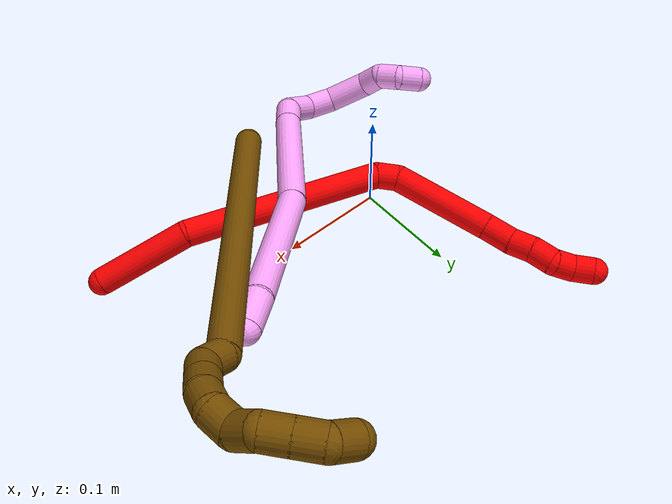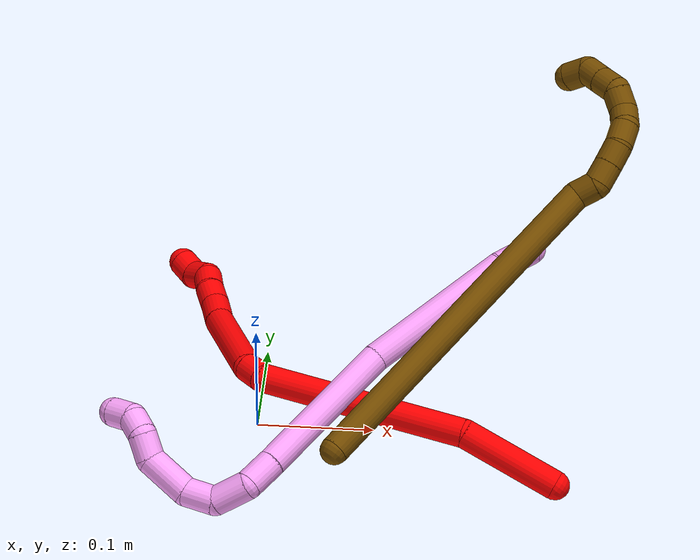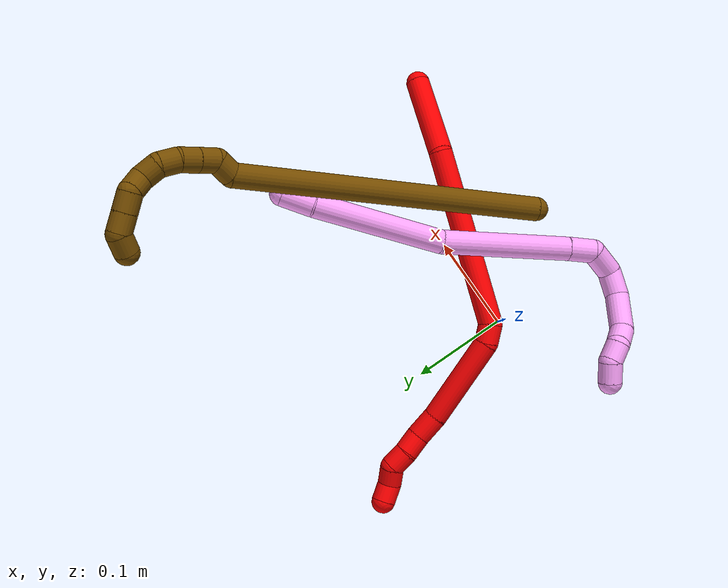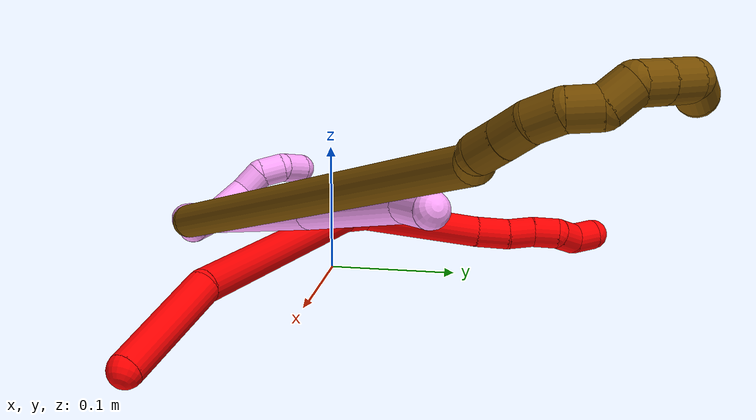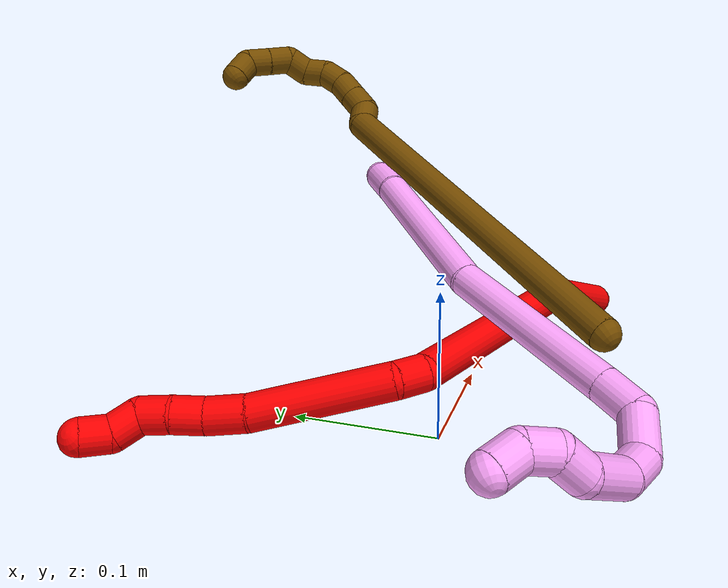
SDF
<sdf version="1.7">
 <world name="default">
  <model name="photoneo_s_sensor">
   <static>1</static>
   <pose>0 0 2 1.57079 1.57079 3.14159</pose>
   <link name="link">
    <inertial><mass>0.1</mass></inertial>
    <sensor name="sensor" type="depth">
     <update_rate>30</update_rate>
     <camera>
      <horizontal_fov>1.22</horizontal_fov>
      <image><width>1920</width><height>1200</height><format>B8G8R8</format></image>
      <clip><near>0.1</near><far>4</far></clip>
      <depth_camera><output>points</output></depth_camera>
     </camera>
     <plugin name="camera_plugin" filename="libgazebo_ros_depth_camera.so">
      <baseline>0.2</baseline>
      <alwaysOn>1</alwaysOn>
      <updateRate>0.0</updateRate>
      <cameraName>camera_ir</cameraName>
      <imageTopicName>/camera/color/image_raw</imageTopicName>
      <cameraInfoTopicName>/camera/color/camera_info</cameraInfoTopicName>
      <depthImageTopicName>/camera/depth/image_raw</depthImageTopicName>
      <depthImageCameraInfoTopicName>/camera/depth/camera_info</depthImageCameraInfoTopicName>
      <pointCloudTopicName>/camera/depth/points</pointCloudTopicName>
      <frameName>fr_optical</frameName>
      <pointCloudCutoff>0.1</pointCloudCutoff>
      <pointCloudCutoffMax>2.0</pointCloudCutoffMax>
      <distortionK1>0</distortionK1>
      <distortionK2>0</distortionK2>
      <distortionK3>0</distortionK3>
      <distortionT1>0</distortionT1>
      <distortionT2>0</distortionT2>
      <CxPrime>0</CxPrime>
      <Cx>0</Cx>
      <Cy>0</Cy>
      <focalLength>0</focalLength>
      <hackBaseline>0</hackBaseline>
     </plugin>
    </sensor>
   </link>
  </model>
  <model name="bin">
   <static>1</static>
   <link name="bottom">
    <collision name="collision-bottom">
     <pose>0 0 -0.01 0 -0 0</pose>
     <geometry><box><size>0.8 0.6 0.02</size></box></geometry>
     <surface>
      <friction><ode><mu>100</mu><mu2>100</mu2></ode></friction>
      <contact><collide_bitmask>65535</collide_bitmask></contact>
     </surface>
    </collision>
   </link>
   <link name="west_wall">
    <collision name="collision-west_wall">
     <pose>-0.41 0 0.1 0 -0 0</pose>
     <geometry><box><size>0.02 0.6 0.2</size></box></geometry>
     <surface>
      <friction><ode><mu>100</mu><mu2>100</mu2></ode></friction>
      <contact><collide_bitmask>65535</collide_bitmask></contact>
     </surface>
    </collision>
   </link>
   <link name="east_wall">
    <collision name="collision-east_wall">
     <pose>0.41 0 0.1 0 -0 0</pose>
     <geometry><box><size>0.02 0.6 0.2</size></box></geometry>
     <surface>
      <friction><ode><mu>100</mu><mu2>100</mu2></ode></friction>
      <contact><collide_bitmask>65535</collide_bitmask></contact>
     </surface>
    </collision>
   </link>
   <link name="south_wall">
    <collision name="collision-south_wall">
     <pose>0 -0.31 0.1 0 -0 0</pose>
     <geometry><box><size>0.8 0.02 0.2</size></box></geometry>
     <surface>
      <friction><ode><mu>100</mu><mu2>100</mu2></ode></friction>
      <contact><collide_bitmask>65535</collide_bitmask></contact>
     </surface>
    </collision>
   </link>
   <link name="north_wall">
    <collision name="collision-north_wall">
     <pose>0 0.31 0.1 0 -0 0</pose>
     <geometry><box><size>0.8 0.02 0.2</size></box></geometry>
     <surface>
      <friction><ode><mu>100</mu><mu2>100</mu2></ode></friction>
      <contact><collide_bitmask>65535</collide_bitmask></contact>
     </surface>
    </collision>
   </link>
  </model>
  <model name="2">
   <static>0</static>
   <link name="2">
    <collision name="collision-cylinder-e_1_1_4">
     <pose>-0.00991 0.01316 0.040696 -0.312755 -0.227692 0.036051</pose>
     <geometry><cylinder><radius>0.0125</radius><length>0.087808</length></cylinder></geometry>
     <surface>
      <friction><ode><mu>1.16</mu><mu2>1.16</mu2><slip1>0</slip1><slip2>0</slip2></ode></friction>
      <contact><ode><kp>1e+06</kp><kd>1</kd><max_vel>0</max_vel><min_depth>0.001</min_depth></ode></contact>
     </surface>
    </collision>
    <visual name="visual-cylinder-e_1_1_4">
     <pose>-0.00991 0.01316 0.040696 -0.312755 -0.227692 0.036051</pose>
     <geometry><cylinder><radius>0.0125</radius><length>0.087808</length></cylinder></geometry>
     <material><ambient>1 0 0 1</ambient></material>
    </visual>
    <collision name="collision-cylinder-e_2_4_5">
     <pose>-0.06645 0.065152 0.152587 -0.499336 -0.521821 0.135952</pose>
     <geometry><cylinder><radius>0.0125</radius><length>0.187092</length></cylinder></geometry>
     <surface>
      <friction><ode><mu>1.16</mu><mu2>1.16</mu2><slip1>0</slip1><slip2>0</slip2></ode></friction>
      <contact><ode><kp>1e+06</kp><kd>1</kd><max_vel>0</max_vel><min_depth>0.001</min_depth></ode></contact>
     </surface>
    </collision>
    <visual name="visual-cylinder-e_2_4_5">
     <pose>-0.06645 0.065152 0.152587 -0.499336 -0.521821 0.135952</pose>
     <geometry><cylinder><radius>0.0125</radius><length>0.187092</length></cylinder></geometry>
     <material><ambient>1 0 0 1</ambient></material>
    </visual>
    <collision name="collision-cylinder-e_3_5_6">
     <pose>-0.115886 0.112264 0.229327 -0.980617 -0.274547 0.14721</pose>
     <geometry><cylinder><radius>0.0125</radius><length>0.020707</length></cylinder></geometry>
     <surface>
      <friction><ode><mu>1.16</mu><mu2>1.16</mu2><slip1>0</slip1><slip2>0</slip2></ode></friction>
      <contact><ode><kp>1e+06</kp><kd>1</kd><max_vel>0</max_vel><min_depth>0.001</min_depth></ode></contact>
     </surface>
    </collision>
    <visual name="visual-cylinder-e_3_5_6">
     <pose>-0.115886 0.112264 0.229327 -0.980617 -0.274547 0.14721</pose>
     <geometry><cylinder><radius>0.0125</radius><length>0.020707</length></cylinder></geometry>
     <material><ambient>1 0 0 1</ambient></material>
    </visual>
    <collision name="collision-cylinder-e_4_6_7">
     <pose>-0.124209 0.166569 0.24494 -1.35546 -0.116564 0.093862</pose>
     <geometry><cylinder><radius>0.0125</radius><length>0.09487</length></cylinder></geometry>
     <surface>
      <friction><ode><mu>1.16</mu><mu2>1.16</mu2><slip1>0</slip1><slip2>0</slip2></ode></friction>
      <contact><ode><kp>1e+06</kp><kd>1</kd><max_vel>0</max_vel><min_depth>0.001</min_depth></ode></contact>
     </surface>
    </collision>
    <visual name="visual-cylinder-e_4_6_7">
     <pose>-0.124209 0.166569 0.24494 -1.35546 -0.116564 0.093862</pose>
     <geometry><cylinder><radius>0.0125</radius><length>0.09487</length></cylinder></geometry>
     <material><ambient>1 0 0 1</ambient></material>
    </visual>
    <collision name="collision-cylinder-e_5_7_8">
     <pose>-0.129132 0.225839 0.257688 -1.37109 0.043911 -0.035915</pose>
     <geometry><cylinder><radius>0.0125</radius><length>0.027054</length></cylinder></geometry>
     <surface>
      <friction><ode><mu>1.16</mu><mu2>1.16</mu2><slip1>0</slip1><slip2>0</slip2></ode></friction>
      <contact><ode><kp>1e+06</kp><kd>1</kd><max_vel>0</max_vel><min_depth>0.001</min_depth></ode></contact>
     </surface>
    </collision>
    <visual name="visual-cylinder-e_5_7_8">
     <pose>-0.129132 0.225839 0.257688 -1.37109 0.043911 -0.035915</pose>
     <geometry><cylinder><radius>0.0125</radius><length>0.027054</length></cylinder></geometry>
     <material><ambient>1 0 0 1</ambient></material>
    </visual>
    <collision name="collision-cylinder-e_6_8_9">
     <pose>-0.12745 0.249047 0.26415 -1.20809 0.101778 -0.070268</pose>
     <geometry><cylinder><radius>0.0125</radius><length>0.021424</length></cylinder></geometry>
     <surface>
      <friction><ode><mu>1.16</mu><mu2>1.16</mu2><slip1>0</slip1><slip2>0</slip2></ode></friction>
      <contact><ode><kp>1e+06</kp><kd>1</kd><max_vel>0</max_vel><min_depth>0.001</min_depth></ode></contact>
     </surface>
    </collision>
    <visual name="visual-cylinder-e_6_8_9">
     <pose>-0.12745 0.249047 0.26415 -1.20809 0.101778 -0.070268</pose>
     <geometry><cylinder><radius>0.0125</radius><length>0.021424</length></cylinder></geometry>
     <material><ambient>1 0 0 1</ambient></material>
    </visual>
    <collision name="collision-cylinder-e_7_9_10">
     <pose>-0.125417 0.269268 0.26983 -1.38771 0.090285 -0.075118</pose>
     <geometry><cylinder><radius>0.0125</radius><length>0.020948</length></cylinder></geometry>
     <surface>
      <friction><ode><mu>1.16</mu><mu2>1.16</mu2><slip1>0</slip1><slip2>0</slip2></ode></friction>
      <contact><ode><kp>1e+06</kp><kd>1</kd><max_vel>0</max_vel><min_depth>0.001</min_depth></ode></contact>
     </surface>
    </collision>
    <visual name="visual-cylinder-e_7_9_10">
     <pose>-0.125417 0.269268 0.26983 -1.38771 0.090285 -0.075118</pose>
     <geometry><cylinder><radius>0.0125</radius><length>0.020948</length></cylinder></geometry>
     <material><ambient>1 0 0 1</ambient></material>
    </visual>
    <collision name="collision-cylinder-e_8_10_11">
     <pose>-0.129802 0.287415 0.274929 -1.18549 -0.559186 0.382048</pose>
     <geometry><cylinder><radius>0.0125</radius><length>0.020089</length></cylinder></geometry>
     <surface>
      <friction><ode><mu>1.16</mu><mu2>1.16</mu2><slip1>0</slip1><slip2>0</slip2></ode></friction>
      <contact><ode><kp>1e+06</kp><kd>1</kd><max_vel>0</max_vel><min_depth>0.001</min_depth></ode></contact>
     </surface>
    </collision>
    <visual name="visual-cylinder-e_8_10_11">
     <pose>-0.129802 0.287415 0.274929 -1.18549 -0.559186 0.382048</pose>
     <geometry><cylinder><radius>0.0125</radius><length>0.020089</length></cylinder></geometry>
     <material><ambient>1 0 0 1</ambient></material>
    </visual>
    <collision name="collision-cylinder-e_9_11_2">
     <pose>-0.136156 0.303588 0.283645 -0.983284 -0.102743 0.055053</pose>
     <geometry><cylinder><radius>0.0125</radius><length>0.020008</length></cylinder></geometry>
     <surface>
      <friction><ode><mu>1.16</mu><mu2>1.16</mu2><slip1>0</slip1><slip2>0</slip2></ode></friction>
      <contact><ode><kp>1e+06</kp><kd>1</kd><max_vel>0</max_vel><min_depth>0.001</min_depth></ode></contact>
     </surface>
    </collision>
    <visual name="visual-cylinder-e_9_11_2">
     <pose>-0.136156 0.303588 0.283645 -0.983284 -0.102743 0.055053</pose>
     <geometry><cylinder><radius>0.0125</radius><length>0.020008</length></cylinder></geometry>
     <material><ambient>1 0 0 1</ambient></material>
    </visual>
    <collision name="collision-sphere-2">
     <pose>-0.137182 0.311871 0.289161 0 -0 0</pose>
     <geometry><sphere><radius>0.0125</radius></sphere></geometry>
     <surface>
      <friction><ode><mu>1.16</mu><mu2>1.16</mu2><slip1>0</slip1><slip2>0</slip2></ode></friction>
      <contact><ode><kp>1e+06</kp><kd>1</kd><max_vel>0</max_vel><min_depth>0.001</min_depth></ode></contact>
     </surface>
    </collision>
    <visual name="visual-sphere-2">
     <pose>-0.137182 0.311871 0.289161 0 -0 0</pose>
     <geometry><sphere><radius>0.0125</radius></sphere></geometry>
     <material><ambient>1 0 0 1</ambient></material>
    </visual>
    <collision name="collision-sphere-11">
     <pose>-0.13513 0.295306 0.278129 0 -0 0</pose>
     <geometry><sphere><radius>0.0125</radius></sphere></geometry>
     <surface>
      <friction><ode><mu>1.16</mu><mu2>1.16</mu2><slip1>0</slip1><slip2>0</slip2></ode></friction>
      <contact><ode><kp>1e+06</kp><kd>1</kd><max_vel>0</max_vel><min_depth>0.001</min_depth></ode></contact>
     </surface>
    </collision>
    <visual name="visual-sphere-11">
     <pose>-0.13513 0.295306 0.278129 0 -0 0</pose>
     <geometry><sphere><radius>0.0125</radius></sphere></geometry>
     <material><ambient>1 0 0 1</ambient></material>
    </visual>
    <collision name="collision-sphere-10">
     <pose>-0.124473 0.279525 0.271729 0 -0 0</pose>
     <geometry><sphere><radius>0.0125</radius></sphere></geometry>
     <surface>
      <friction><ode><mu>1.16</mu><mu2>1.16</mu2><slip1>0</slip1><slip2>0</slip2></ode></friction>
      <contact><ode><kp>1e+06</kp><kd>1</kd><max_vel>0</max_vel><min_depth>0.001</min_depth></ode></contact>
     </surface>
    </collision>
    <visual name="visual-sphere-10">
     <pose>-0.124473 0.279525 0.271729 0 -0 0</pose>
     <geometry><sphere><radius>0.0125</radius></sphere></geometry>
     <material><ambient>1 0 0 1</ambient></material>
    </visual>
    <collision name="collision-sphere-9">
     <pose>-0.126362 0.259011 0.267931 0 -0 0</pose>
     <geometry><sphere><radius>0.0125</radius></sphere></geometry>
     <surface>
      <friction><ode><mu>1.16</mu><mu2>1.16</mu2><slip1>0</slip1><slip2>0</slip2></ode></friction>
      <contact><ode><kp>1e+06</kp><kd>1</kd><max_vel>0</max_vel><min_depth>0.001</min_depth></ode></contact>
     </surface>
    </collision>
    <visual name="visual-sphere-9">
     <pose>-0.126362 0.259011 0.267931 0 -0 0</pose>
     <geometry><sphere><radius>0.0125</radius></sphere></geometry>
     <material><ambient>1 0 0 1</ambient></material>
    </visual>
    <collision name="collision-sphere-4">
     <pose>-0.019821 0.02632 0.081392 0 -0 0</pose>
     <geometry><sphere><radius>0.0125</radius></sphere></geometry>
     <surface>
      <friction><ode><mu>1.16</mu><mu2>1.16</mu2><slip1>0</slip1><slip2>0</slip2></ode></friction>
      <contact><ode><kp>1e+06</kp><kd>1</kd><max_vel>0</max_vel><min_depth>0.001</min_depth></ode></contact>
     </surface>
    </collision>
    <visual name="visual-sphere-4">
     <pose>-0.019821 0.02632 0.081392 0 -0 0</pose>
     <geometry><sphere><radius>0.0125</radius></sphere></geometry>
     <material><ambient>1 0 0 1</ambient></material>
    </visual>
    <collision name="collision-sphere-1">
     <geometry><sphere><radius>0.0125</radius></sphere></geometry>
     <surface>
      <friction><ode><mu>1.16</mu><mu2>1.16</mu2><slip1>0</slip1><slip2>0</slip2></ode></friction>
      <contact><ode><kp>1e+06</kp><kd>1</kd><max_vel>0</max_vel><min_depth>0.001</min_depth></ode></contact>
     </surface>
    </collision>
    <visual name="visual-sphere-1">
     <geometry><sphere><radius>0.0125</radius></sphere></geometry>
     <material><ambient>1 0 0 1</ambient></material>
    </visual>
    <collision name="collision-sphere-8">
     <pose>-0.128539 0.239084 0.260369 0 -0 0</pose>
     <geometry><sphere><radius>0.0125</radius></sphere></geometry>
     <surface>
      <friction><ode><mu>1.16</mu><mu2>1.16</mu2><slip1>0</slip1><slip2>0</slip2></ode></friction>
      <contact><ode><kp>1e+06</kp><kd>1</kd><max_vel>0</max_vel><min_depth>0.001</min_depth></ode></contact>
     </surface>
    </collision>
    <visual name="visual-sphere-8">
     <pose>-0.128539 0.239084 0.260369 0 -0 0</pose>
     <geometry><sphere><radius>0.0125</radius></sphere></geometry>
     <material><ambient>1 0 0 1</ambient></material>
    </visual>
    <collision name="collision-sphere-5">
     <pose>-0.113079 0.103984 0.223781 0 -0 0</pose>
     <geometry><sphere><radius>0.0125</radius></sphere></geometry>
     <surface>
      <friction><ode><mu>1.16</mu><mu2>1.16</mu2><slip1>0</slip1><slip2>0</slip2></ode></friction>
      <contact><ode><kp>1e+06</kp><kd>1</kd><max_vel>0</max_vel><min_depth>0.001</min_depth></ode></contact>
     </surface>
    </collision>
    <visual name="visual-sphere-5">
     <pose>-0.113079 0.103984 0.223781 0 -0 0</pose>
     <geometry><sphere><radius>0.0125</radius></sphere></geometry>
     <material><ambient>1 0 0 1</ambient></material>
    </visual>
    <collision name="collision-sphere-6">
     <pose>-0.118693 0.120544 0.234873 0 -0 0</pose>
     <geometry><sphere><radius>0.0125</radius></sphere></geometry>
     <surface>
      <friction><ode><mu>1.16</mu><mu2>1.16</mu2><slip1>0</slip1><slip2>0</slip2></ode></friction>
      <contact><ode><kp>1e+06</kp><kd>1</kd><max_vel>0</max_vel><min_depth>0.001</min_depth></ode></contact>
     </surface>
    </collision>
    <visual name="visual-sphere-6">
     <pose>-0.118693 0.120544 0.234873 0 -0 0</pose>
     <geometry><sphere><radius>0.0125</radius></sphere></geometry>
     <material><ambient>1 0 0 1</ambient></material>
    </visual>
    <collision name="collision-sphere-7">
     <pose>-0.129726 0.212594 0.255007 0 -0 0</pose>
     <geometry><sphere><radius>0.0125</radius></sphere></geometry>
     <surface>
      <friction><ode><mu>1.16</mu><mu2>1.16</mu2><slip1>0</slip1><slip2>0</slip2></ode></friction>
      <contact><ode><kp>1e+06</kp><kd>1</kd><max_vel>0</max_vel><min_depth>0.001</min_depth></ode></contact>
     </surface>
    </collision>
    <visual name="visual-sphere-7">
     <pose>-0.129726 0.212594 0.255007 0 -0 0</pose>
     <geometry><sphere><radius>0.0125</radius></sphere></geometry>
     <material><ambient>1 0 0 1</ambient></material>
    </visual>
    <inertial>
     <pose>-0.083338 0.120812 0.179177 0 -0 0</pose>
     <mass>0.5</mass>
     <inertia><ixx>0.000681</ixx><ixy>0</ixy><ixz>0</ixz><iyy>0.000675</iyy><iyz>0</iyz><izz>-8e-06</izz></inertia>
    </inertial>
   </link>
   <pose>0.258432 -0.075754 0.011492 -0.394636 -0.814433 0.414095</pose>
  </model>
  <model name="4">
   <static>0</static>
   <link name="4">
    <collision name="collision-cylinder-e_1_1_4">
     <pose>-0.005455 -0.001877 -0.015612 3.02192 -0.333885 -2.45846</pose>
     <geometry><cylinder><radius>0.0125</radius><length>0.033288</length></cylinder></geometry>
     <surface>
      <friction><ode><mu>1.16</mu><mu2>1.16</mu2><slip1>0</slip1><slip2>0</slip2></ode></friction>
      <contact><ode><kp>1e+06</kp><kd>1</kd><max_vel>0</max_vel><min_depth>0.001</min_depth></ode></contact>
     </surface>
    </collision>
    <visual name="visual-cylinder-e_1_1_4">
     <pose>-0.005455 -0.001877 -0.015612 3.02192 -0.333885 -2.45846</pose>
     <geometry><cylinder><radius>0.0125</radius><length>0.033288</length></cylinder></geometry>
     <material><ambient>1 0.65098 0.996078 1</ambient></material>
    </visual>
    <collision name="collision-cylinder-e_2_4_5">
     <pose>-0.023426 -0.015661 -0.097989 2.96512 -0.182508 -1.6046</pose>
     <geometry><cylinder><radius>0.0125</radius><length>0.137926</length></cylinder></geometry>
     <surface>
      <friction><ode><mu>1.16</mu><mu2>1.16</mu2><slip1>0</slip1><slip2>0</slip2></ode></friction>
      <contact><ode><kp>1e+06</kp><kd>1</kd><max_vel>0</max_vel><min_depth>0.001</min_depth></ode></contact>
     </surface>
    </collision>
    <visual name="visual-cylinder-e_2_4_5">
     <pose>-0.023426 -0.015661 -0.097989 2.96512 -0.182508 -1.6046</pose>
     <geometry><cylinder><radius>0.0125</radius><length>0.137926</length></cylinder></geometry>
     <material><ambient>1 0.65098 0.996078 1</ambient></material>
    </visual>
    <collision name="collision-cylinder-e_3_5_6">
     <pose>-0.048179 -0.053619 -0.226724 2.74361 -0.180055 -0.841788</pose>
     <geometry><cylinder><radius>0.0125</radius><length>0.136656</length></cylinder></geometry>
     <surface>
      <friction><ode><mu>1.16</mu><mu2>1.16</mu2><slip1>0</slip1><slip2>0</slip2></ode></friction>
      <contact><ode><kp>1e+06</kp><kd>1</kd><max_vel>0</max_vel><min_depth>0.001</min_depth></ode></contact>
     </surface>
    </collision>
    <visual name="visual-cylinder-e_3_5_6">
     <pose>-0.048179 -0.053619 -0.226724 2.74361 -0.180055 -0.841788</pose>
     <geometry><cylinder><radius>0.0125</radius><length>0.136656</length></cylinder></geometry>
     <material><ambient>1 0.65098 0.996078 1</ambient></material>
    </visual>
    <collision name="collision-cylinder-e_4_6_7">
     <pose>-0.062993 -0.084548 -0.30182 2.78595 -0.182042 -0.939842</pose>
     <geometry><cylinder><radius>0.0125</radius><length>0.028478</length></cylinder></geometry>
     <surface>
      <friction><ode><mu>1.16</mu><mu2>1.16</mu2><slip1>0</slip1><slip2>0</slip2></ode></friction>
      <contact><ode><kp>1e+06</kp><kd>1</kd><max_vel>0</max_vel><min_depth>0.001</min_depth></ode></contact>
     </surface>
    </collision>
    <visual name="visual-cylinder-e_4_6_7">
     <pose>-0.062993 -0.084548 -0.30182 2.78595 -0.182042 -0.939842</pose>
     <geometry><cylinder><radius>0.0125</radius><length>0.028478</length></cylinder></geometry>
     <material><ambient>1 0.65098 0.996078 1</ambient></material>
    </visual>
    <collision name="collision-cylinder-e_5_7_8">
     <pose>-0.064883 -0.083974 -0.329973 -2.79363 0.043001 -0.243489</pose>
     <geometry><cylinder><radius>0.0125</radius><length>0.031995</length></cylinder></geometry>
     <surface>
      <friction><ode><mu>1.16</mu><mu2>1.16</mu2><slip1>0</slip1><slip2>0</slip2></ode></friction>
      <contact><ode><kp>1e+06</kp><kd>1</kd><max_vel>0</max_vel><min_depth>0.001</min_depth></ode></contact>
     </surface>
    </collision>
    <visual name="visual-cylinder-e_5_7_8">
     <pose>-0.064883 -0.083974 -0.329973 -2.79363 0.043001 -0.243489</pose>
     <geometry><cylinder><radius>0.0125</radius><length>0.031995</length></cylinder></geometry>
     <material><ambient>1 0.65098 0.996078 1</ambient></material>
    </visual>
    <collision name="collision-cylinder-e_6_8_9">
     <pose>-0.069886 -0.068682 -0.352397 -2.21545 -0.43288 0.829692</pose>
     <geometry><cylinder><radius>0.0125</radius><length>0.02713</length></cylinder></geometry>
     <surface>
      <friction><ode><mu>1.16</mu><mu2>1.16</mu2><slip1>0</slip1><slip2>0</slip2></ode></friction>
      <contact><ode><kp>1e+06</kp><kd>1</kd><max_vel>0</max_vel><min_depth>0.001</min_depth></ode></contact>
     </surface>
    </collision>
    <visual name="visual-cylinder-e_6_8_9">
     <pose>-0.069886 -0.068682 -0.352397 -2.21545 -0.43288 0.829692</pose>
     <geometry><cylinder><radius>0.0125</radius><length>0.02713</length></cylinder></geometry>
     <material><ambient>1 0.65098 0.996078 1</ambient></material>
    </visual>
    <collision name="collision-cylinder-e_7_9_10">
     <pose>-0.088324 -0.043505 -0.363291 -1.79479 -0.681155 0.836044</pose>
     <geometry><cylinder><radius>0.0125</radius><length>0.040491</length></cylinder></geometry>
     <surface>
      <friction><ode><mu>1.16</mu><mu2>1.16</mu2><slip1>0</slip1><slip2>0</slip2></ode></friction>
      <contact><ode><kp>1e+06</kp><kd>1</kd><max_vel>0</max_vel><min_depth>0.001</min_depth></ode></contact>
     </surface>
    </collision>
    <visual name="visual-cylinder-e_7_9_10">
     <pose>-0.088324 -0.043505 -0.363291 -1.79479 -0.681155 0.836044</pose>
     <geometry><cylinder><radius>0.0125</radius><length>0.040491</length></cylinder></geometry>
     <material><ambient>1 0.65098 0.996078 1</ambient></material>
    </visual>
    <collision name="collision-cylinder-e_8_10_11">
     <pose>-0.108455 -0.020797 -0.363112 -1.10871 -0.730692 0.465076</pose>
     <geometry><cylinder><radius>0.0125</radius><length>0.022122</length></cylinder></geometry>
     <surface>
      <friction><ode><mu>1.16</mu><mu2>1.16</mu2><slip1>0</slip1><slip2>0</slip2></ode></friction>
      <contact><ode><kp>1e+06</kp><kd>1</kd><max_vel>0</max_vel><min_depth>0.001</min_depth></ode></contact>
     </surface>
    </collision>
    <visual name="visual-cylinder-e_8_10_11">
     <pose>-0.108455 -0.020797 -0.363112 -1.10871 -0.730692 0.465076</pose>
     <geometry><cylinder><radius>0.0125</radius><length>0.022122</length></cylinder></geometry>
     <material><ambient>1 0.65098 0.996078 1</ambient></material>
    </visual>
    <collision name="collision-cylinder-e_9_11_12">
     <pose>-0.118236 -0.003641 -0.358385 -1.46345 -0.239146 0.214958</pose>
     <geometry><cylinder><radius>0.0125</radius><length>0.020254</length></cylinder></geometry>
     <surface>
      <friction><ode><mu>1.16</mu><mu2>1.16</mu2><slip1>0</slip1><slip2>0</slip2></ode></friction>
      <contact><ode><kp>1e+06</kp><kd>1</kd><max_vel>0</max_vel><min_depth>0.001</min_depth></ode></contact>
     </surface>
    </collision>
    <visual name="visual-cylinder-e_9_11_12">
     <pose>-0.118236 -0.003641 -0.358385 -1.46345 -0.239146 0.214958</pose>
     <geometry><cylinder><radius>0.0125</radius><length>0.020254</length></cylinder></geometry>
     <material><ambient>1 0.65098 0.996078 1</ambient></material>
    </visual>
    <collision name="collision-cylinder-e_10_12_2">
     <pose>-0.121466 0.015756 -0.362245 -2.04332 -0.076859 0.125499</pose>
     <geometry><cylinder><radius>0.0125</radius><length>0.021659</length></cylinder></geometry>
     <surface>
      <friction><ode><mu>1.16</mu><mu2>1.16</mu2><slip1>0</slip1><slip2>0</slip2></ode></friction>
      <contact><ode><kp>1e+06</kp><kd>1</kd><max_vel>0</max_vel><min_depth>0.001</min_depth></ode></contact>
     </surface>
    </collision>
    <visual name="visual-cylinder-e_10_12_2">
     <pose>-0.121466 0.015756 -0.362245 -2.04332 -0.076859 0.125499</pose>
     <geometry><cylinder><radius>0.0125</radius><length>0.021659</length></cylinder></geometry>
     <material><ambient>1 0.65098 0.996078 1</ambient></material>
    </visual>
    <collision name="collision-sphere-2">
     <pose>-0.122297 0.02537 -0.36716 0 -0 0</pose>
     <geometry><sphere><radius>0.0125</radius></sphere></geometry>
     <surface>
      <friction><ode><mu>1.16</mu><mu2>1.16</mu2><slip1>0</slip1><slip2>0</slip2></ode></friction>
      <contact><ode><kp>1e+06</kp><kd>1</kd><max_vel>0</max_vel><min_depth>0.001</min_depth></ode></contact>
     </surface>
    </collision>
    <visual name="visual-sphere-2">
     <pose>-0.122297 0.02537 -0.36716 0 -0 0</pose>
     <geometry><sphere><radius>0.0125</radius></sphere></geometry>
     <material><ambient>1 0.65098 0.996078 1</ambient></material>
    </visual>
    <collision name="collision-sphere-12">
     <pose>-0.120634 0.006141 -0.357331 0 -0 0</pose>
     <geometry><sphere><radius>0.0125</radius></sphere></geometry>
     <surface>
      <friction><ode><mu>1.16</mu><mu2>1.16</mu2><slip1>0</slip1><slip2>0</slip2></ode></friction>
      <contact><ode><kp>1e+06</kp><kd>1</kd><max_vel>0</max_vel><min_depth>0.001</min_depth></ode></contact>
     </surface>
    </collision>
    <visual name="visual-sphere-12">
     <pose>-0.120634 0.006141 -0.357331 0 -0 0</pose>
     <geometry><sphere><radius>0.0125</radius></sphere></geometry>
     <material><ambient>1 0.65098 0.996078 1</ambient></material>
    </visual>
    <collision name="collision-sphere-11">
     <pose>-0.115837 -0.013423 -0.359439 0 -0 0</pose>
     <geometry><sphere><radius>0.0125</radius></sphere></geometry>
     <surface>
      <friction><ode><mu>1.16</mu><mu2>1.16</mu2><slip1>0</slip1><slip2>0</slip2></ode></friction>
      <contact><ode><kp>1e+06</kp><kd>1</kd><max_vel>0</max_vel><min_depth>0.001</min_depth></ode></contact>
     </surface>
    </collision>
    <visual name="visual-sphere-11">
     <pose>-0.115837 -0.013423 -0.359439 0 -0 0</pose>
     <geometry><sphere><radius>0.0125</radius></sphere></geometry>
     <material><ambient>1 0.65098 0.996078 1</ambient></material>
    </visual>
    <collision name="collision-sphere-10">
     <pose>-0.101073 -0.02817 -0.366784 0 -0 0</pose>
     <geometry><sphere><radius>0.0125</radius></sphere></geometry>
     <surface>
      <friction><ode><mu>1.16</mu><mu2>1.16</mu2><slip1>0</slip1><slip2>0</slip2></ode></friction>
      <contact><ode><kp>1e+06</kp><kd>1</kd><max_vel>0</max_vel><min_depth>0.001</min_depth></ode></contact>
     </surface>
    </collision>
    <visual name="visual-sphere-10">
     <pose>-0.101073 -0.02817 -0.366784 0 -0 0</pose>
     <geometry><sphere><radius>0.0125</radius></sphere></geometry>
     <material><ambient>1 0.65098 0.996078 1</ambient></material>
    </visual>
    <collision name="collision-sphere-9">
     <pose>-0.075576 -0.058839 -0.359797 0 -0 0</pose>
     <geometry><sphere><radius>0.0125</radius></sphere></geometry>
     <surface>
      <friction><ode><mu>1.16</mu><mu2>1.16</mu2><slip1>0</slip1><slip2>0</slip2></ode></friction>
      <contact><ode><kp>1e+06</kp><kd>1</kd><max_vel>0</max_vel><min_depth>0.001</min_depth></ode></contact>
     </surface>
    </collision>
    <visual name="visual-sphere-9">
     <pose>-0.075576 -0.058839 -0.359797 0 -0 0</pose>
     <geometry><sphere><radius>0.0125</radius></sphere></geometry>
     <material><ambient>1 0.65098 0.996078 1</ambient></material>
    </visual>
    <collision name="collision-sphere-4">
     <pose>-0.010909 -0.003755 -0.031225 0 -0 0</pose>
     <geometry><sphere><radius>0.0125</radius></sphere></geometry>
     <surface>
      <friction><ode><mu>1.16</mu><mu2>1.16</mu2><slip1>0</slip1><slip2>0</slip2></ode></friction>
      <contact><ode><kp>1e+06</kp><kd>1</kd><max_vel>0</max_vel><min_depth>0.001</min_depth></ode></contact>
     </surface>
    </collision>
    <visual name="visual-sphere-4">
     <pose>-0.010909 -0.003755 -0.031225 0 -0 0</pose>
     <geometry><sphere><radius>0.0125</radius></sphere></geometry>
     <material><ambient>1 0.65098 0.996078 1</ambient></material>
    </visual>
    <collision name="collision-sphere-1">
     <geometry><sphere><radius>0.0125</radius></sphere></geometry>
     <surface>
      <friction><ode><mu>1.16</mu><mu2>1.16</mu2><slip1>0</slip1><slip2>0</slip2></ode></friction>
      <contact><ode><kp>1e+06</kp><kd>1</kd><max_vel>0</max_vel><min_depth>0.001</min_depth></ode></contact>
     </surface>
    </collision>
    <visual name="visual-sphere-1">
     <geometry><sphere><radius>0.0125</radius></sphere></geometry>
     <material><ambient>1 0.65098 0.996078 1</ambient></material>
    </visual>
    <collision name="collision-sphere-8">
     <pose>-0.064195 -0.078524 -0.344998 0 -0 0</pose>
     <geometry><sphere><radius>0.0125</radius></sphere></geometry>
     <surface>
      <friction><ode><mu>1.16</mu><mu2>1.16</mu2><slip1>0</slip1><slip2>0</slip2></ode></friction>
      <contact><ode><kp>1e+06</kp><kd>1</kd><max_vel>0</max_vel><min_depth>0.001</min_depth></ode></contact>
     </surface>
    </collision>
    <visual name="visual-sphere-8">
     <pose>-0.064195 -0.078524 -0.344998 0 -0 0</pose>
     <geometry><sphere><radius>0.0125</radius></sphere></geometry>
     <material><ambient>1 0.65098 0.996078 1</ambient></material>
    </visual>
    <collision name="collision-sphere-5">
     <pose>-0.035942 -0.027566 -0.164754 0 -0 0</pose>
     <geometry><sphere><radius>0.0125</radius></sphere></geometry>
     <surface>
      <friction><ode><mu>1.16</mu><mu2>1.16</mu2><slip1>0</slip1><slip2>0</slip2></ode></friction>
      <contact><ode><kp>1e+06</kp><kd>1</kd><max_vel>0</max_vel><min_depth>0.001</min_depth></ode></contact>
     </surface>
    </collision>
    <visual name="visual-sphere-5">
     <pose>-0.035942 -0.027566 -0.164754 0 -0 0</pose>
     <geometry><sphere><radius>0.0125</radius></sphere></geometry>
     <material><ambient>1 0.65098 0.996078 1</ambient></material>
    </visual>
    <collision name="collision-sphere-6">
     <pose>-0.060415 -0.079672 -0.288693 0 -0 0</pose>
     <geometry><sphere><radius>0.0125</radius></sphere></geometry>
     <surface>
      <friction><ode><mu>1.16</mu><mu2>1.16</mu2><slip1>0</slip1><slip2>0</slip2></ode></friction>
      <contact><ode><kp>1e+06</kp><kd>1</kd><max_vel>0</max_vel><min_depth>0.001</min_depth></ode></contact>
     </surface>
    </collision>
    <visual name="visual-sphere-6">
     <pose>-0.060415 -0.079672 -0.288693 0 -0 0</pose>
     <geometry><sphere><radius>0.0125</radius></sphere></geometry>
     <material><ambient>1 0.65098 0.996078 1</ambient></material>
    </visual>
    <collision name="collision-sphere-7">
     <pose>-0.065571 -0.089424 -0.314948 0 -0 0</pose>
     <geometry><sphere><radius>0.0125</radius></sphere></geometry>
     <surface>
      <friction><ode><mu>1.16</mu><mu2>1.16</mu2><slip1>0</slip1><slip2>0</slip2></ode></friction>
      <contact><ode><kp>1e+06</kp><kd>1</kd><max_vel>0</max_vel><min_depth>0.001</min_depth></ode></contact>
     </surface>
    </collision>
    <visual name="visual-sphere-7">
     <pose>-0.065571 -0.089424 -0.314948 0 -0 0</pose>
     <geometry><sphere><radius>0.0125</radius></sphere></geometry>
     <material><ambient>1 0.65098 0.996078 1</ambient></material>
    </visual>
    <inertial>
     <pose>-0.053527 -0.036924 -0.223158 0 -0 0</pose>
     <mass>0.5</mass>
     <inertia>
      <ixx>-0.000241</ixx>
      <ixy>0</ixy>
      <ixz>0</ixz>
      <iyy>-0.000484</iyy>
      <iyz>0</iyz>
      <izz>0.000171</izz>
     </inertia>
    </inertial>
   </link>
   <pose>0.227976 0.112108 0.116682 -0.170859 1.0809 0.354407</pose>
  </model>
  <model name="12">
   <static>0</static>
   <link name="12">
    <collision name="collision-cylinder-e_1_1_4">
     <pose>0.026561 0.024415 0.155638 -0.155602 0.167028 -0.013051</pose>
     <geometry><cylinder><radius>0.0125</radius><length>0.319529</length></cylinder></geometry>
     <surface>
      <friction><ode><mu>1.16</mu><mu2>1.16</mu2><slip1>0</slip1><slip2>0</slip2></ode></friction>
      <contact><ode><kp>1e+06</kp><kd>1</kd><max_vel>0</max_vel><min_depth>0.001</min_depth></ode></contact>
     </surface>
    </collision>
    <visual name="visual-cylinder-e_1_1_4">
     <pose>0.026561 0.024415 0.155638 -0.155602 0.167028 -0.013051</pose>
     <geometry><cylinder><radius>0.0125</radius><length>0.319529</length></cylinder></geometry>
     <material><ambient>0.466667 0.301961 0 1</ambient></material>
    </visual>
    <collision name="collision-cylinder-e_2_4_5">
     <pose>0.056827 0.044236 0.319618 0.503364 0.370969 0.096423</pose>
     <geometry><cylinder><radius>0.0125</radius><length>0.020437</length></cylinder></geometry>
     <surface>
      <friction><ode><mu>1.16</mu><mu2>1.16</mu2><slip1>0</slip1><slip2>0</slip2></ode></friction>
      <contact><ode><kp>1e+06</kp><kd>1</kd><max_vel>0</max_vel><min_depth>0.001</min_depth></ode></contact>
     </surface>
    </collision>
    <visual name="visual-cylinder-e_2_4_5">
     <pose>0.056827 0.044236 0.319618 0.503364 0.370969 0.096423</pose>
     <geometry><cylinder><radius>0.0125</radius><length>0.020437</length></cylinder></geometry>
     <material><ambient>0.466667 0.301961 0 1</ambient></material>
    </visual>
    <collision name="collision-cylinder-e_3_5_6">
     <pose>0.059639 0.04011 0.337922 -0.046949 -0.089238 0.002097</pose>
     <geometry><cylinder><radius>0.0125</radius><length>0.020024</length></cylinder></geometry>
     <surface>
      <friction><ode><mu>1.16</mu><mu2>1.16</mu2><slip1>0</slip1><slip2>0</slip2></ode></friction>
      <contact><ode><kp>1e+06</kp><kd>1</kd><max_vel>0</max_vel><min_depth>0.001</min_depth></ode></contact>
     </surface>
    </collision>
    <visual name="visual-cylinder-e_3_5_6">
     <pose>0.059639 0.04011 0.337922 -0.046949 -0.089238 0.002097</pose>
     <geometry><cylinder><radius>0.0125</radius><length>0.020024</length></cylinder></geometry>
     <material><ambient>0.466667 0.301961 0 1</ambient></material>
    </visual>
    <collision name="collision-cylinder-e_4_6_7">
     <pose>0.057589 0.040996 0.357807 -0.042125 -0.116011 0.002447</pose>
     <geometry><cylinder><radius>0.0125</radius><length>0.020001</length></cylinder></geometry>
     <surface>
      <friction><ode><mu>1.16</mu><mu2>1.16</mu2><slip1>0</slip1><slip2>0</slip2></ode></friction>
      <contact><ode><kp>1e+06</kp><kd>1</kd><max_vel>0</max_vel><min_depth>0.001</min_depth></ode></contact>
     </surface>
    </collision>
    <visual name="visual-cylinder-e_4_6_7">
     <pose>0.057589 0.040996 0.357807 -0.042125 -0.116011 0.002447</pose>
     <geometry><cylinder><radius>0.0125</radius><length>0.020001</length></cylinder></geometry>
     <material><ambient>0.466667 0.301961 0 1</ambient></material>
    </visual>
    <collision name="collision-cylinder-e_5_7_8">
     <pose>0.054488 0.044427 0.377068 -0.31214 -0.195589 0.030872</pose>
     <geometry><cylinder><radius>0.0125</radius><length>0.020001</length></cylinder></geometry>
     <surface>
      <friction><ode><mu>1.16</mu><mu2>1.16</mu2><slip1>0</slip1><slip2>0</slip2></ode></friction>
      <contact><ode><kp>1e+06</kp><kd>1</kd><max_vel>0</max_vel><min_depth>0.001</min_depth></ode></contact>
     </surface>
    </collision>
    <visual name="visual-cylinder-e_5_7_8">
     <pose>0.054488 0.044427 0.377068 -0.31214 -0.195589 0.030872</pose>
     <geometry><cylinder><radius>0.0125</radius><length>0.020001</length></cylinder></geometry>
     <material><ambient>0.466667 0.301961 0 1</ambient></material>
    </visual>
    <collision name="collision-cylinder-e_6_8_9">
     <pose>0.049812 0.054472 0.392967 -0.819833 -0.276818 0.120913</pose>
     <geometry><cylinder><radius>0.0125</radius><length>0.020001</length></cylinder></geometry>
     <surface>
      <friction><ode><mu>1.16</mu><mu2>1.16</mu2><slip1>0</slip1><slip2>0</slip2></ode></friction>
      <contact><ode><kp>1e+06</kp><kd>1</kd><max_vel>0</max_vel><min_depth>0.001</min_depth></ode></contact>
     </surface>
    </collision>
    <visual name="visual-cylinder-e_6_8_9">
     <pose>0.049812 0.054472 0.392967 -0.819833 -0.276818 0.120913</pose>
     <geometry><cylinder><radius>0.0125</radius><length>0.020001</length></cylinder></geometry>
     <material><ambient>0.466667 0.301961 0 1</ambient></material>
    </visual>
    <collision name="collision-cylinder-e_7_9_10">
     <pose>0.039612 0.064289 0.405575 -0.43183 -0.84285 0.196017</pose>
     <geometry><cylinder><radius>0.0125</radius><length>0.020003</length></cylinder></geometry>
     <surface>
      <friction><ode><mu>1.16</mu><mu2>1.16</mu2><slip1>0</slip1><slip2>0</slip2></ode></friction>
      <contact><ode><kp>1e+06</kp><kd>1</kd><max_vel>0</max_vel><min_depth>0.001</min_depth></ode></contact>
     </surface>
    </collision>
    <visual name="visual-cylinder-e_7_9_10">
     <pose>0.039612 0.064289 0.405575 -0.43183 -0.84285 0.196017</pose>
     <geometry><cylinder><radius>0.0125</radius><length>0.020003</length></cylinder></geometry>
     <material><ambient>0.466667 0.301961 0 1</ambient></material>
    </visual>
    <collision name="collision-cylinder-e_8_10_11">
     <pose>0.026079 0.074873 0.413167 -1.37471 -0.651771 0.541208</pose>
     <geometry><cylinder><radius>0.0125</radius><length>0.020003</length></cylinder></geometry>
     <surface>
      <friction><ode><mu>1.16</mu><mu2>1.16</mu2><slip1>0</slip1><slip2>0</slip2></ode></friction>
      <contact><ode><kp>1e+06</kp><kd>1</kd><max_vel>0</max_vel><min_depth>0.001</min_depth></ode></contact>
     </surface>
    </collision>
    <visual name="visual-cylinder-e_8_10_11">
     <pose>0.026079 0.074873 0.413167 -1.37471 -0.651771 0.541208</pose>
     <geometry><cylinder><radius>0.0125</radius><length>0.020003</length></cylinder></geometry>
     <material><ambient>0.466667 0.301961 0 1</ambient></material>
    </visual>
    <collision name="collision-cylinder-e_9_11_12">
     <pose>0.013912 0.090422 0.416373 -1.36029 -0.65597 0.537196</pose>
     <geometry><cylinder><radius>0.0125</radius><length>0.02</length></cylinder></geometry>
     <surface>
      <friction><ode><mu>1.16</mu><mu2>1.16</mu2><slip1>0</slip1><slip2>0</slip2></ode></friction>
      <contact><ode><kp>1e+06</kp><kd>1</kd><max_vel>0</max_vel><min_depth>0.001</min_depth></ode></contact>
     </surface>
    </collision>
    <visual name="visual-cylinder-e_9_11_12">
     <pose>0.013912 0.090422 0.416373 -1.36029 -0.65597 0.537196</pose>
     <geometry><cylinder><radius>0.0125</radius><length>0.02</length></cylinder></geometry>
     <material><ambient>0.466667 0.301961 0 1</ambient></material>
    </visual>
    <collision name="collision-cylinder-e_10_12_2">
     <pose>0.004114 0.105617 0.41247 -2.21212 -0.378864 0.730519</pose>
     <geometry><cylinder><radius>0.0125</radius><length>0.02</length></cylinder></geometry>
     <surface>
      <friction><ode><mu>1.16</mu><mu2>1.16</mu2><slip1>0</slip1><slip2>0</slip2></ode></friction>
      <contact><ode><kp>1e+06</kp><kd>1</kd><max_vel>0</max_vel><min_depth>0.001</min_depth></ode></contact>
     </surface>
    </collision>
    <visual name="visual-cylinder-e_10_12_2">
     <pose>0.004114 0.105617 0.41247 -2.21212 -0.378864 0.730519</pose>
     <geometry><cylinder><radius>0.0125</radius><length>0.02</length></cylinder></geometry>
     <material><ambient>0.466667 0.301961 0 1</ambient></material>
    </visual>
    <collision name="collision-sphere-2">
     <pose>0.000416 0.113062 0.406912 0 -0 0</pose>
     <geometry><sphere><radius>0.0125</radius></sphere></geometry>
     <surface>
      <friction><ode><mu>1.16</mu><mu2>1.16</mu2><slip1>0</slip1><slip2>0</slip2></ode></friction>
      <contact><ode><kp>1e+06</kp><kd>1</kd><max_vel>0</max_vel><min_depth>0.001</min_depth></ode></contact>
     </surface>
    </collision>
    <visual name="visual-sphere-2">
     <pose>0.000416 0.113062 0.406912 0 -0 0</pose>
     <geometry><sphere><radius>0.0125</radius></sphere></geometry>
     <material><ambient>0.466667 0.301961 0 1</ambient></material>
    </visual>
    <collision name="collision-sphere-12">
     <pose>0.007813 0.098172 0.418028 0 -0 0</pose>
     <geometry><sphere><radius>0.0125</radius></sphere></geometry>
     <surface>
      <friction><ode><mu>1.16</mu><mu2>1.16</mu2><slip1>0</slip1><slip2>0</slip2></ode></friction>
      <contact><ode><kp>1e+06</kp><kd>1</kd><max_vel>0</max_vel><min_depth>0.001</min_depth></ode></contact>
     </surface>
    </collision>
    <visual name="visual-sphere-12">
     <pose>0.007813 0.098172 0.418028 0 -0 0</pose>
     <geometry><sphere><radius>0.0125</radius></sphere></geometry>
     <material><ambient>0.466667 0.301961 0 1</ambient></material>
    </visual>
    <collision name="collision-sphere-11">
     <pose>0.020012 0.082672 0.414717 0 -0 0</pose>
     <geometry><sphere><radius>0.0125</radius></sphere></geometry>
     <surface>
      <friction><ode><mu>1.16</mu><mu2>1.16</mu2><slip1>0</slip1><slip2>0</slip2></ode></friction>
      <contact><ode><kp>1e+06</kp><kd>1</kd><max_vel>0</max_vel><min_depth>0.001</min_depth></ode></contact>
     </surface>
    </collision>
    <visual name="visual-sphere-11">
     <pose>0.020012 0.082672 0.414717 0 -0 0</pose>
     <geometry><sphere><radius>0.0125</radius></sphere></geometry>
     <material><ambient>0.466667 0.301961 0 1</ambient></material>
    </visual>
    <collision name="collision-sphere-10">
     <pose>0.032146 0.067074 0.411618 0 -0 0</pose>
     <geometry><sphere><radius>0.0125</radius></sphere></geometry>
     <surface>
      <friction><ode><mu>1.16</mu><mu2>1.16</mu2><slip1>0</slip1><slip2>0</slip2></ode></friction>
      <contact><ode><kp>1e+06</kp><kd>1</kd><max_vel>0</max_vel><min_depth>0.001</min_depth></ode></contact>
     </surface>
    </collision>
    <visual name="visual-sphere-10">
     <pose>0.032146 0.067074 0.411618 0 -0 0</pose>
     <geometry><sphere><radius>0.0125</radius></sphere></geometry>
     <material><ambient>0.466667 0.301961 0 1</ambient></material>
    </visual>
    <collision name="collision-sphere-9">
     <pose>0.047079 0.061504 0.399531 0 -0 0</pose>
     <geometry><sphere><radius>0.0125</radius></sphere></geometry>
     <surface>
      <friction><ode><mu>1.16</mu><mu2>1.16</mu2><slip1>0</slip1><slip2>0</slip2></ode></friction>
      <contact><ode><kp>1e+06</kp><kd>1</kd><max_vel>0</max_vel><min_depth>0.001</min_depth></ode></contact>
     </surface>
    </collision>
    <visual name="visual-sphere-9">
     <pose>0.047079 0.061504 0.399531 0 -0 0</pose>
     <geometry><sphere><radius>0.0125</radius></sphere></geometry>
     <material><ambient>0.466667 0.301961 0 1</ambient></material>
    </visual>
    <collision name="collision-sphere-4">
     <pose>0.053123 0.04883 0.311275 0 -0 0</pose>
     <geometry><sphere><radius>0.0125</radius></sphere></geometry>
     <surface>
      <friction><ode><mu>1.16</mu><mu2>1.16</mu2><slip1>0</slip1><slip2>0</slip2></ode></friction>
      <contact><ode><kp>1e+06</kp><kd>1</kd><max_vel>0</max_vel><min_depth>0.001</min_depth></ode></contact>
     </surface>
    </collision>
    <visual name="visual-sphere-4">
     <pose>0.053123 0.04883 0.311275 0 -0 0</pose>
     <geometry><sphere><radius>0.0125</radius></sphere></geometry>
     <material><ambient>0.466667 0.301961 0 1</ambient></material>
    </visual>
    <collision name="collision-sphere-1">
     <geometry><sphere><radius>0.0125</radius></sphere></geometry>
     <surface>
      <friction><ode><mu>1.16</mu><mu2>1.16</mu2><slip1>0</slip1><slip2>0</slip2></ode></friction>
      <contact><ode><kp>1e+06</kp><kd>1</kd><max_vel>0</max_vel><min_depth>0.001</min_depth></ode></contact>
     </surface>
    </collision>
    <visual name="visual-sphere-1">
     <geometry><sphere><radius>0.0125</radius></sphere></geometry>
     <material><ambient>0.466667 0.301961 0 1</ambient></material>
    </visual>
    <collision name="collision-sphere-8">
     <pose>0.052545 0.04744 0.386404 0 -0 0</pose>
     <geometry><sphere><radius>0.0125</radius></sphere></geometry>
     <surface>
      <friction><ode><mu>1.16</mu><mu2>1.16</mu2><slip1>0</slip1><slip2>0</slip2></ode></friction>
      <contact><ode><kp>1e+06</kp><kd>1</kd><max_vel>0</max_vel><min_depth>0.001</min_depth></ode></contact>
     </surface>
    </collision>
    <visual name="visual-sphere-8">
     <pose>0.052545 0.04744 0.386404 0 -0 0</pose>
     <geometry><sphere><radius>0.0125</radius></sphere></geometry>
     <material><ambient>0.466667 0.301961 0 1</ambient></material>
    </visual>
    <collision name="collision-sphere-5">
     <pose>0.060531 0.039642 0.32796 0 -0 0</pose>
     <geometry><sphere><radius>0.0125</radius></sphere></geometry>
     <surface>
      <friction><ode><mu>1.16</mu><mu2>1.16</mu2><slip1>0</slip1><slip2>0</slip2></ode></friction>
      <contact><ode><kp>1e+06</kp><kd>1</kd><max_vel>0</max_vel><min_depth>0.001</min_depth></ode></contact>
     </surface>
    </collision>
    <visual name="visual-sphere-5">
     <pose>0.060531 0.039642 0.32796 0 -0 0</pose>
     <geometry><sphere><radius>0.0125</radius></sphere></geometry>
     <material><ambient>0.466667 0.301961 0 1</ambient></material>
    </visual>
    <collision name="collision-sphere-6">
     <pose>0.058747 0.040578 0.347883 0 -0 0</pose>
     <geometry><sphere><radius>0.0125</radius></sphere></geometry>
     <surface>
      <friction><ode><mu>1.16</mu><mu2>1.16</mu2><slip1>0</slip1><slip2>0</slip2></ode></friction>
      <contact><ode><kp>1e+06</kp><kd>1</kd><max_vel>0</max_vel><min_depth>0.001</min_depth></ode></contact>
     </surface>
    </collision>
    <visual name="visual-sphere-6">
     <pose>0.058747 0.040578 0.347883 0 -0 0</pose>
     <geometry><sphere><radius>0.0125</radius></sphere></geometry>
     <material><ambient>0.466667 0.301961 0 1</ambient></material>
    </visual>
    <collision name="collision-sphere-7">
     <pose>0.056432 0.041415 0.367732 0 -0 0</pose>
     <geometry><sphere><radius>0.0125</radius></sphere></geometry>
     <surface>
      <friction><ode><mu>1.16</mu><mu2>1.16</mu2><slip1>0</slip1><slip2>0</slip2></ode></friction>
      <contact><ode><kp>1e+06</kp><kd>1</kd><max_vel>0</max_vel><min_depth>0.001</min_depth></ode></contact>
     </surface>
    </collision>
    <visual name="visual-sphere-7">
     <pose>0.056432 0.041415 0.367732 0 -0 0</pose>
     <geometry><sphere><radius>0.0125</radius></sphere></geometry>
     <material><ambient>0.466667 0.301961 0 1</ambient></material>
    </visual>
    <inertial>
     <pose>0.03151 0.038022 0.237084 0 -0 0</pose>
     <mass>0.5</mass>
     <inertia>
      <ixx>0.002671</ixx>
      <ixy>0</ixy>
      <ixz>0</ixz>
      <iyy>0.002684</iyy>
      <iyz>0</iyz>
      <izz>-0.00084</izz>
     </inertia>
    </inertial>
   </link>
   <pose>0.07405 -0.095047 0.055069 -0.873136 0.630746 -0.202963</pose>
  </model>
 </world>
</sdf>
